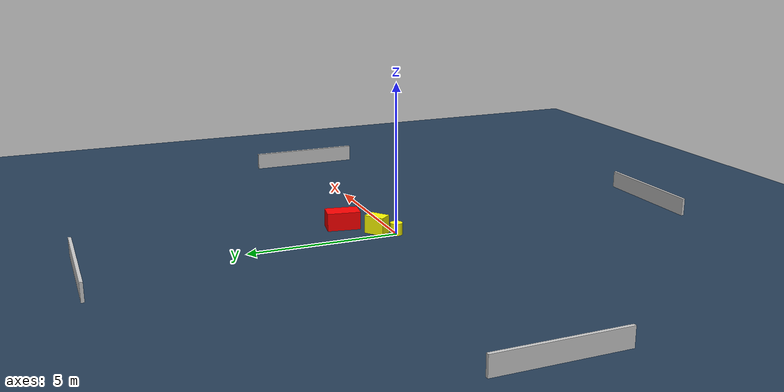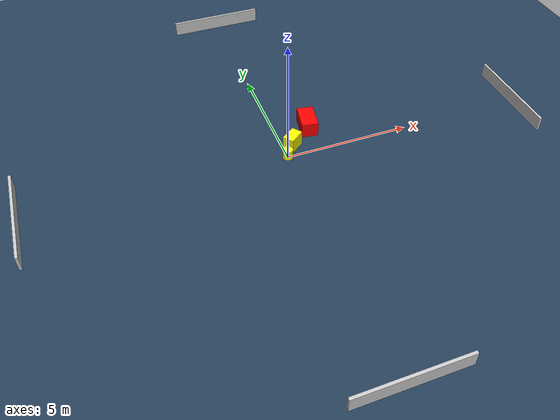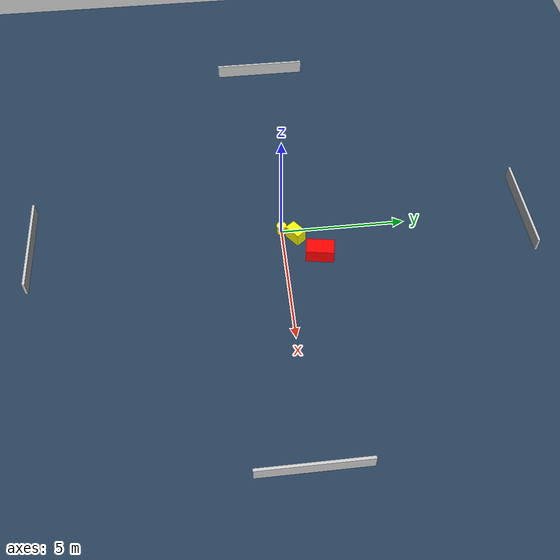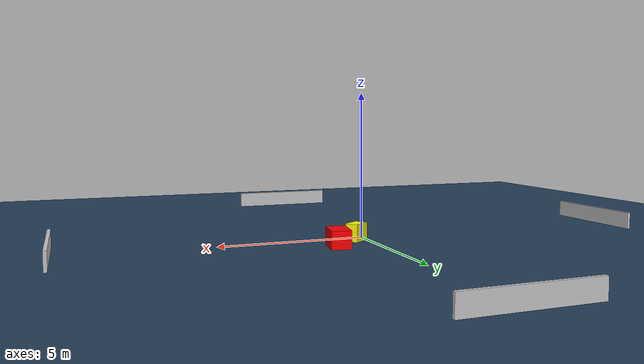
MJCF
<?xml version="1.0" ?>
<mujoco model="generated_environment">
  <option timestep="0.01" integrator="RK4" cone="elliptic"/>
  <default>
    <geom density="1"/>
  </default>
  <asset>
    <texture builtin="gradient" height="3072" name="skybox" rgb1="0.3 0.5 0.7" rgb2="0 0 0" type="skybox" width="512"/>
    <texture builtin="checker" height="300" name="groundplane" rgb1="0.2 0.3 0.4" rgb2="0.1 0.2 0.3" type="2d" width="300"/>
    <material name="groundplane" reflectance="0.2" texrepeat="5 5" texture="groundplane"/>
  </asset>
  <worldbody>
    <light dir="0 0 -1" directional="true" pos="0 0 1.5"/>
    <geom condim="3" friction="0.5 0.005 0.001" material="groundplane" name="floor" pos="0 0 0" size="0 0 0.05" type="plane"/>
    <body name="walls">
      <geom name="wall_1" condim="4" pos="-10.0 0.0 0.3" rgba="0.800000011920929 0.800000011920929 0.800000011920929 1.0" size="0.05 2.0 0.3" type="box"/>
      <geom name="wall_2" condim="4" pos="10.0 0.0 0.3" rgba="0.800000011920929 0.800000011920929 0.800000011920929 1.0" size="0.05 2.0 0.3" type="box"/>
      <geom name="wall_3" condim="4" pos="0.0 -10.0 0.3" rgba="0.800000011920929 0.800000011920929 0.800000011920929 1.0" size="2.0 0.05 0.3" type="box"/>
      <geom name="wall_4" condim="4" pos="0.0 10.0 0.3" rgba="0.800000011920929 0.800000011920929 0.800000011920929 1.0" size="2.0 0.05 0.3" type="box"/>
    </body>
    <body name="robot">
      <joint name="joint_x" type="slide" pos="0 0 0" axis="1 0 0"/>
      <joint name="joint_y" type="slide" pos="0 0 0" axis="0 1 0"/>
      <geom name="robot" type="cylinder" pos="0.0 0.0 0.2" size="0.2 0.2 0.0" mass="5.0" friction="1.0 0.005 0.0001" condim="4" rgba="1.0 1.0 0.0 1.0"/>
    </body>
    <body name="obstacle_1_movable">
      <geom name="obstacle_1_movable" condim="4" pos="0.3947072200195777 0.5252001990271437 0.3" euler="0 0 307.5603256834433" friction="0.0 0.005 0.001" rgba="1.0 1.0 0.0 1.0" size="0.2226410753844751 0.3418683244218742 0.3" type="box" mass="0.1"/>
      <joint type="free"/>
    </body>
    <body name="obstacle_2_static">
      <geom name="obstacle_2_static" condim="4" pos="1.3513330494189344 1.3853041485676965 0.3" euler="0 0 350.6843867403461" friction="0.0 0.005 0.001" rgba="1.0 0.0 0.0 1.0" size="0.3299357979352586 0.5540343240699912 0.3" type="box"/>
    </body>
  </worldbody>
  <actuator>
    <motor name="actuator_x" joint="joint_x" gear="1" ctrlrange="-1 1"/>
    <motor name="actuator_y" joint="joint_y" gear="1" ctrlrange="-1 1"/>
  </actuator>
</mujoco>
